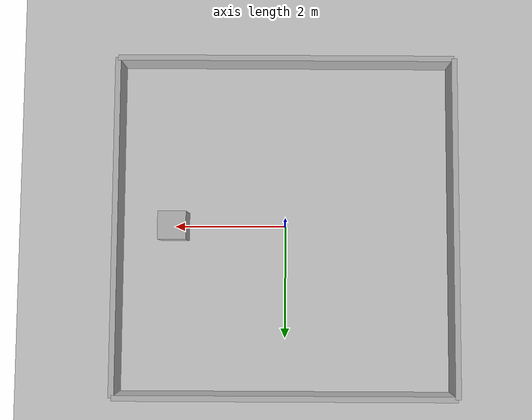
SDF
<?xml version="1.0"?>
<!-- Generated by Robotbase from world.yaml — edit the spec, not this file. -->
<sdf version="1.10">
  <world name="warehouse">
    <physics name="default" type="ignored"><max_step_size>0.001</max_step_size><real_time_factor>1.0</real_time_factor></physics>
    <plugin filename="gz-sim-physics-system" name="gz::sim::systems::Physics"></plugin>
    <plugin filename="gz-sim-user-commands-system" name="gz::sim::systems::UserCommands"></plugin>
    <plugin filename="gz-sim-scene-broadcaster-system" name="gz::sim::systems::SceneBroadcaster"></plugin>
    <light type="directional" name="sun"><cast_shadows>true</cast_shadows><pose>0 0 10 0 0 0</pose><diffuse>0.8 0.8 0.8 1</diffuse><direction>-0.5 0.1 -0.9</direction></light>
    <model name="ground_plane"><static>true</static><pose>0 0 0 0 0 0</pose><link name="link"><collision name="c"><geometry><plane><normal>0 0 1</normal><size>100 100</size></plane></geometry></collision><visual name="v"><geometry><plane><normal>0 0 1</normal><size>100 100</size></plane></geometry></visual></link></model>
    <model name="obstacle_0"><static>true</static><pose>2 0 0.25 0 0 0</pose><link name="link"><collision name="c"><geometry><box><size>0.5 0.5 0.5</size></box></geometry></collision><visual name="v"><geometry><box><size>0.5 0.5 0.5</size></box></geometry></visual></link></model>
    <model name="wall_0"><static>true</static><pose>0 3 0.25 0 0 0</pose><link name="link"><collision name="c"><geometry><box><size>6 0.1 0.5</size></box></geometry></collision><visual name="v"><geometry><box><size>6 0.1 0.5</size></box></geometry></visual></link></model>
    <model name="wall_1"><static>true</static><pose>0 -3 0.25 0 0 0</pose><link name="link"><collision name="c"><geometry><box><size>6 0.1 0.5</size></box></geometry></collision><visual name="v"><geometry><box><size>6 0.1 0.5</size></box></geometry></visual></link></model>
    <model name="wall_2"><static>true</static><pose>3 0 0.25 0 0 1.5708</pose><link name="link"><collision name="c"><geometry><box><size>6 0.1 0.5</size></box></geometry></collision><visual name="v"><geometry><box><size>6 0.1 0.5</size></box></geometry></visual></link></model>
    <model name="wall_3"><static>true</static><pose>-3 0 0.25 0 0 1.5708</pose><link name="link"><collision name="c"><geometry><box><size>6 0.1 0.5</size></box></geometry></collision><visual name="v"><geometry><box><size>6 0.1 0.5</size></box></geometry></visual></link></model>
  </world>
</sdf>
